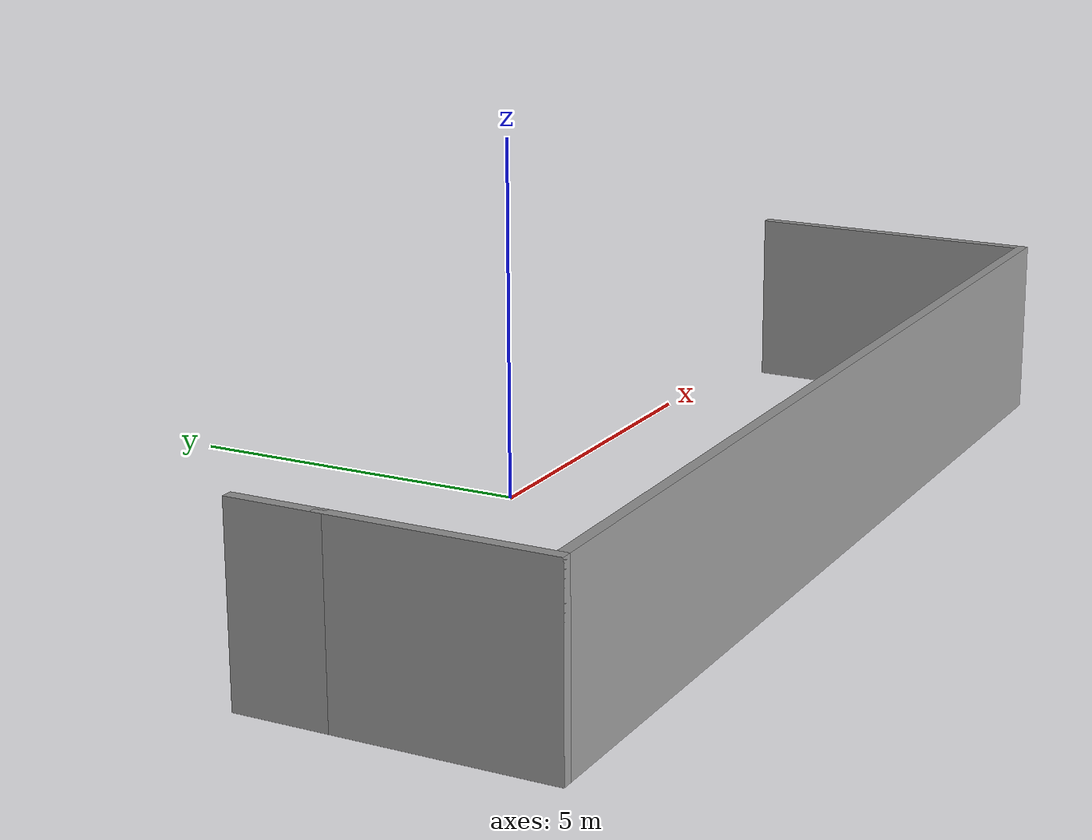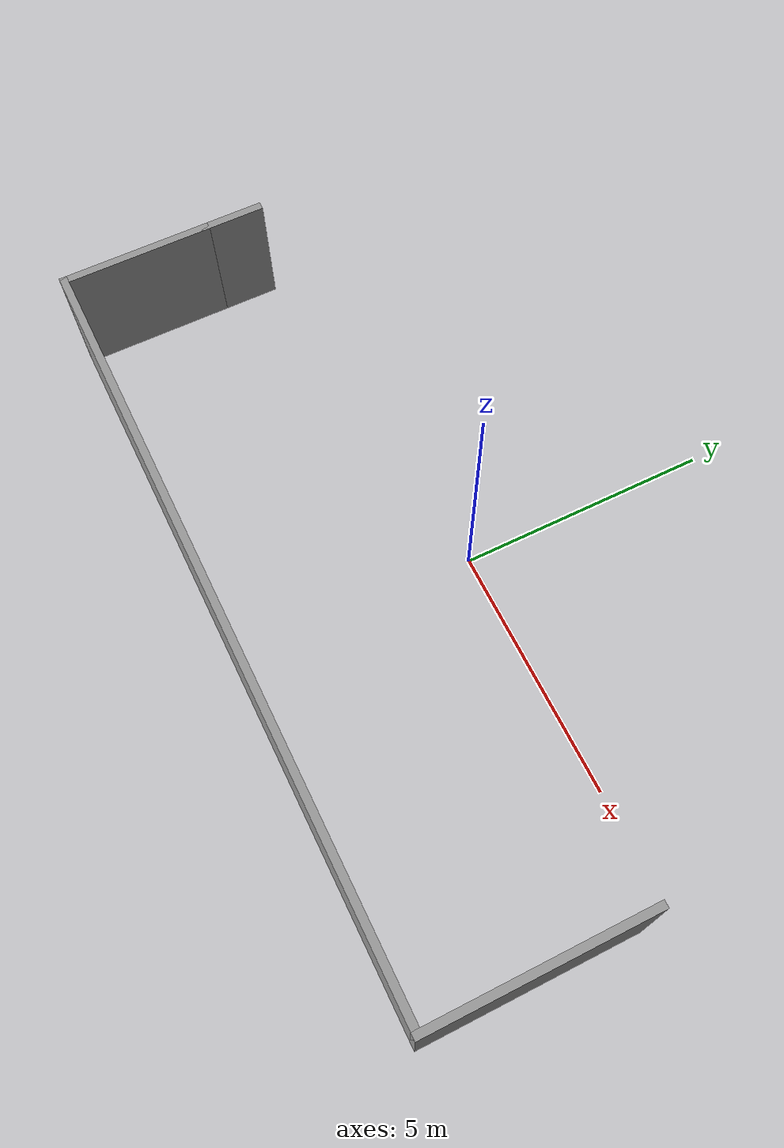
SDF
<?xml version='1.0'?>
<sdf version='1.6'>
  <model name='wu4'>
    <pose frame=''>-0.105 -2.72 0 0 -0 0</pose>
    <link name='Wall_0'>
      <collision name='Wall_0_Collision'>
        <geometry>
          <box>
            <size>1.25 0.15 2.5</size>
          </box>
        </geometry>
        <pose frame=''>0 0 1.25 0 -0 0</pose>
      </collision>
      <visual name='Wall_0_Visual'>
        <pose frame=''>0 0 1.25 0 -0 0</pose>
        <geometry>
          <box>
            <size>1.25 0.15 2.5</size>
          </box>
        </geometry>
        <material>
          <script>
            <uri>file://media/materials/scripts/gazebo.material</uri>
            <name>Gazebo/Grey</name>
          </script>
          <ambient>1 1 1 1</ambient>
        </material>
        <meta>
          <layer>0</layer>
        </meta>
      </visual>
      <pose frame=''>-7.425 1.35 0 0 -0 1.5708</pose>
    </link>
    <link name='Wall_2'>
      <collision name='Wall_2_Collision'>
        <geometry>
          <box>
            <size>3 0.15 2.5</size>
          </box>
        </geometry>
        <pose frame=''>0 0 1.25 0 -0 0</pose>
      </collision>
      <visual name='Wall_2_Visual'>
        <pose frame=''>0 0 1.25 0 -0 0</pose>
        <geometry>
          <box>
            <size>3 0.15 2.5</size>
          </box>
        </geometry>
        <material>
          <script>
            <uri>file://media/materials/scripts/gazebo.material</uri>
            <name>Gazebo/Grey</name>
          </script>
          <ambient>1 1 1 1</ambient>
        </material>
        <meta>
          <layer>0</layer>
        </meta>
      </visual>
      <pose frame=''>-7.425 -0.625 0 0 -0 -1.5708</pose>
    </link>
    <link name='Wall_3'>
      <collision name='Wall_3_Collision'>
        <geometry>
          <box>
            <size>15 0.15 2.5</size>
          </box>
        </geometry>
        <pose frame=''>0 0 1.25 0 -0 0</pose>
      </collision>
      <visual name='Wall_3_Visual'>
        <pose frame=''>0 0 1.25 0 -0 0</pose>
        <geometry>
          <box>
            <size>15 0.15 2.5</size>
          </box>
        </geometry>
        <material>
          <script>
            <uri>file://media/materials/scripts/gazebo.material</uri>
            <name>Gazebo/Grey</name>
          </script>
          <ambient>1 1 1 1</ambient>
        </material>
        <meta>
          <layer>0</layer>
        </meta>
      </visual>
      <pose frame=''>0 -2.05 0 0 -0 0</pose>
    </link>
    <link name='Wall_4'>
      <collision name='Wall_4_Collision'>
        <geometry>
          <box>
            <size>4.25 0.15 2.5</size>
          </box>
        </geometry>
        <pose frame=''>0 0 1.25 0 -0 0</pose>
      </collision>
      <visual name='Wall_4_Visual'>
        <pose frame=''>0 0 1.25 0 -0 0</pose>
        <geometry>
          <box>
            <size>4.25 0.15 2.5</size>
          </box>
        </geometry>
        <material>
          <script>
            <uri>file://media/materials/scripts/gazebo.material</uri>
            <name>Gazebo/Grey</name>
          </script>
          <ambient>1 1 1 1</ambient>
        </material>
        <meta>
          <layer>0</layer>
        </meta>
      </visual>
      <pose frame=''>7.425 0 0 0 -0 1.5708</pose>
    </link>
    <static>1</static>
  </model>
</sdf>
